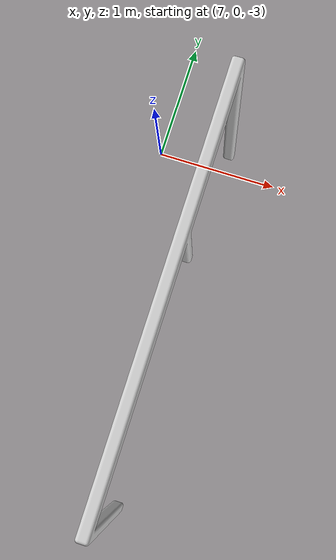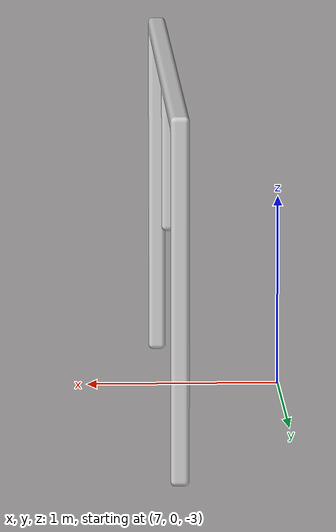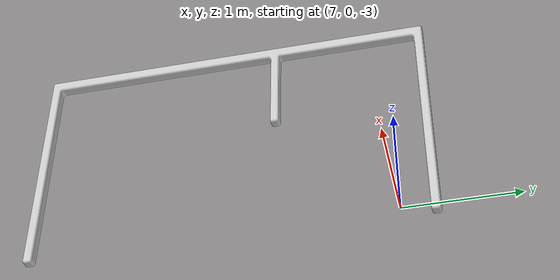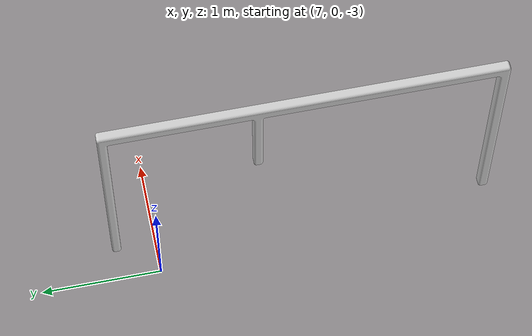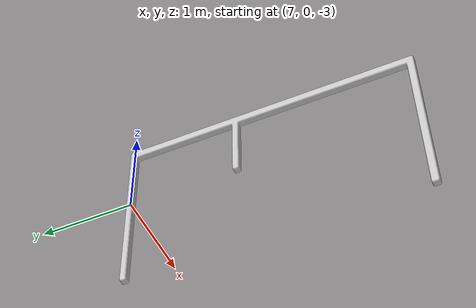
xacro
<?xml version="1.0"?>
<robot name="gate_1" xmlns:xacro="http://www.ros.org/wiki/xacro">

<!-- Introducir meshes -->
<xacro:property name="visual_mesh_file" value="file://$(find uuv_world)/models/meshes/Gate.dae" />

<link name="gate_base">
    <visual>
        <origin xyz="7.526688 -1.294371 -1.583826" rpy="0.0 0.0 1.57"/>
        <geometry>
            <mesh filename="${visual_mesh_file}" scale="1 1 1" />
        </geometry>
    </visual>

        <!-- Se deben cambiar los parametros reales-->
    <collision>
      <origin xyz="7.526688 -1.294371 -1.583826" rpy="0.0 0.0 1.57"/>
      <geometry>
        <mesh filename="${visual_mesh_file}" scale="1 1 1" />
      </geometry>
    </collision>

    <inertial>
      <origin xyz="7.526688 -1.294371 -1.583826" rpy="0.0 0.0 1.57"/>
      <mass value="1"/>
      <inertia
        ixx="1.0" ixy="0.0" ixz="0.0"
        iyy="1.0" iyz="0.0"
        izz="1.0"/>
    </inertial>

</link>

</robot>
